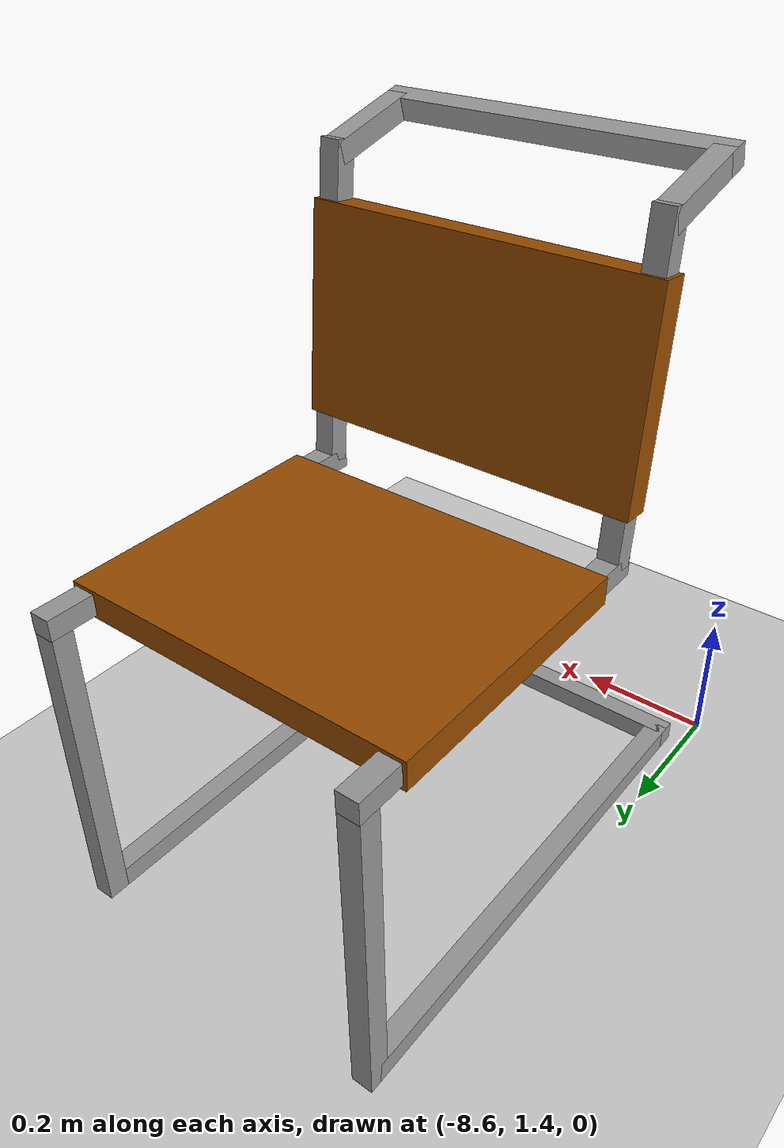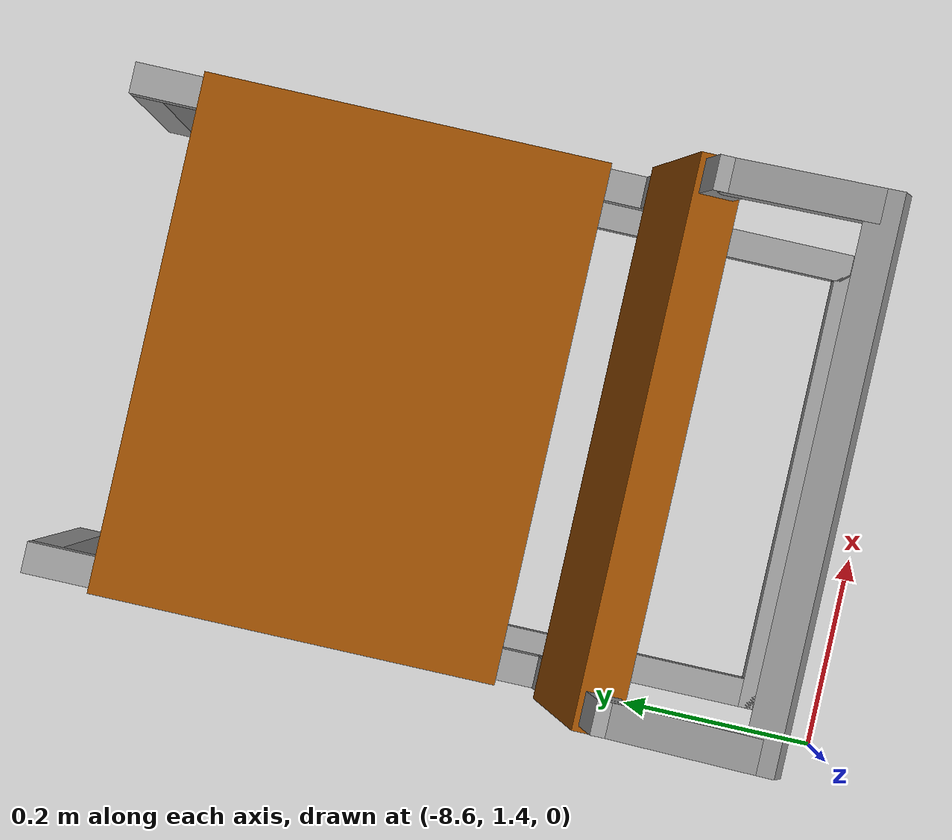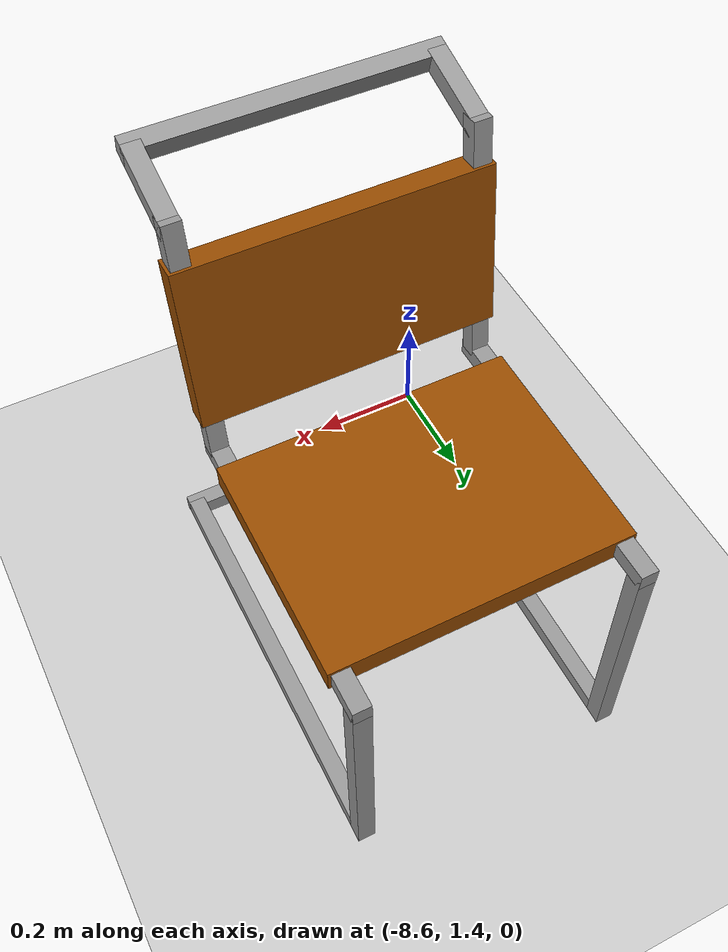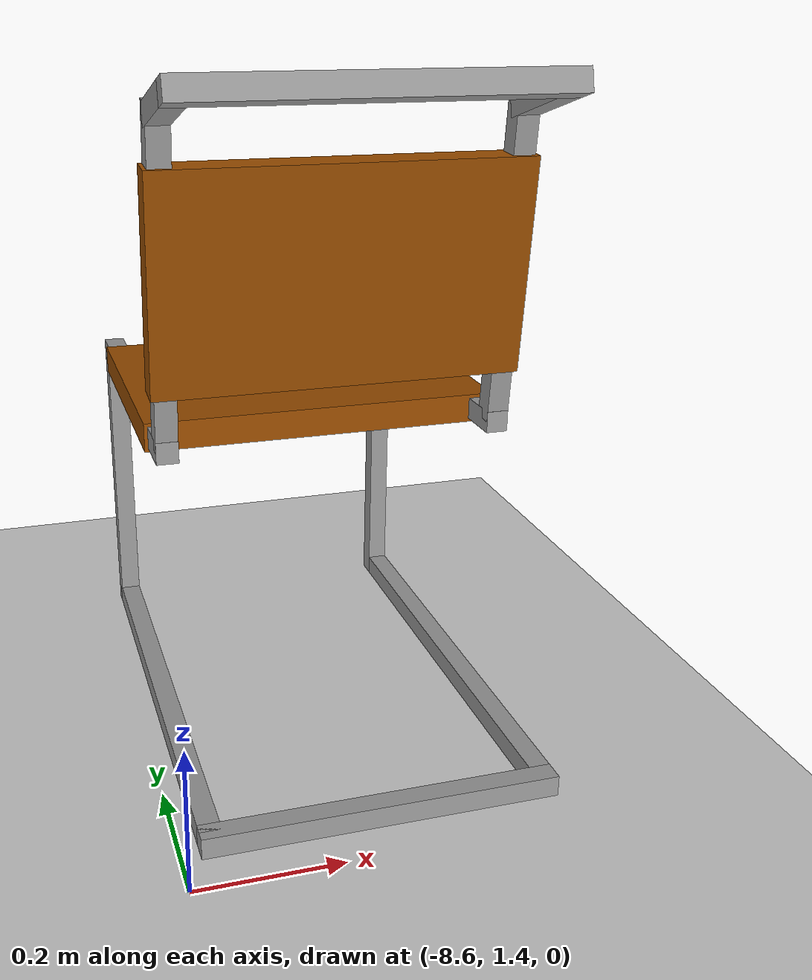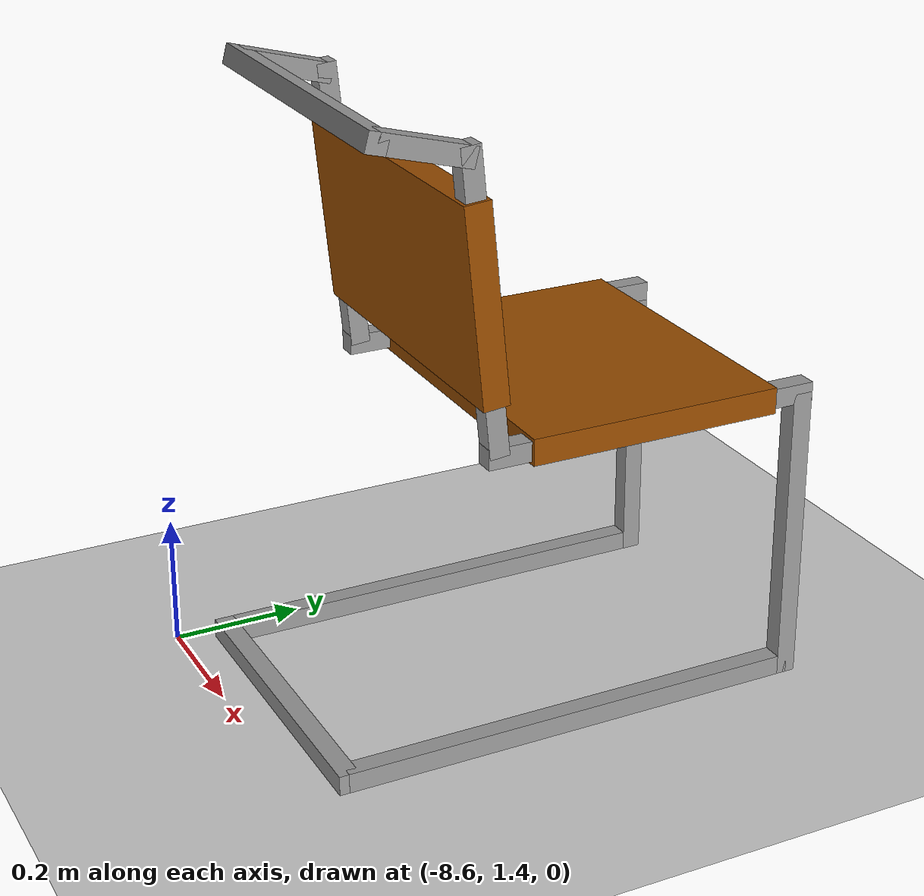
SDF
<sdf version="1.6">
 <world name="default">
  <model name="ground_plane">
   <static>1</static>
   <link name="link">
    <collision name="collision">
     <geometry><plane><normal>0 0 1</normal><size>100 100</size></plane></geometry>
     <surface><friction><ode><mu>100</mu><mu2>50</mu2></ode></friction></surface>
    </collision>
    <visual name="visual">
     <cast_shadows>0</cast_shadows>
     <geometry><plane><normal>0 0 1</normal><size>100 100</size></plane></geometry>
     <material>
      <script><uri>file://media/materials/scripts/gazebo.material</uri><name>Gazebo/Grey</name></script>
     </material>
    </visual>
   </link>
  </model>
  <model name="side_chair_0">
   <link name="link_3">
    <pose>0.475 0 0.46 0 -0 0</pose>
    <inertial>
     <mass>1</mass>
     <inertia>
      <ixx>0.166667</ixx>
      <ixy>0</ixy>
      <ixz>0</ixz>
      <iyy>0.166667</iyy>
      <iyz>0</iyz>
      <izz>0.166667</izz>
     </inertia>
    </inertial>
    <visual name="visual">
     <geometry><box><size>0.39 0.5 0.04</size></box></geometry>
     <material>
      <lighting>1</lighting>
      <script><uri>file://media/materials/scripts/gazebo.material</uri><name>Gazebo/Grey</name></script>
      <shader type="pixel"><normal_map>__default__</normal_map></shader>
      <ambient>0.6 0.3 0 1</ambient>
      <diffuse>0.7 0.7 0.7 1</diffuse>
      <specular>0.01 0.01 0.01 1</specular>
      <emissive>0 0 0 1</emissive>
     </material>
    </visual>
    <collision name="collision">
     <geometry><box><size>0.39 0.5 0.04</size></box></geometry>
     <surface>
      <friction>
       <ode><mu>1</mu><mu2>1</mu2><fdir1>0 0 0</fdir1><slip1>0</slip1><slip2>0</slip2></ode>
       <torsional>
        <coefficient>1</coefficient>
        <patch_radius>0</patch_radius>
        <surface_radius>0</surface_radius>
        <use_patch_radius>1</use_patch_radius>
        <ode><slip>0</slip></ode>
       </torsional>
      </friction>
      <bounce><restitution_coefficient>0</restitution_coefficient><threshold>1e+06</threshold></bounce>
      <contact>
       <collide_without_contact>0</collide_without_contact>
       <collide_without_contact_bitmask>1</collide_without_contact_bitmask>
       <collide_bitmask>1</collide_bitmask>
       <ode>
        <soft_cfm>0</soft_cfm>
        <soft_erp>0.2</soft_erp>
        <kp>1e+13</kp>
        <kd>1</kd>
        <max_vel>0.01</max_vel>
        <min_depth>0</min_depth>
       </ode>
       <bullet>
        <split_impulse>1</split_impulse>
        <split_impulse_penetration_threshold>-0.01</split_impulse_penetration_threshold>
        <soft_cfm>0</soft_cfm>
        <soft_erp>0.2</soft_erp>
        <kp>1e+13</kp>
        <kd>1</kd>
       </bullet>
      </contact>
     </surface>
    </collision>
   </link>
   <link name="link_3_clone">
    <pose>0.21 0 0.68 0 1.4739 0</pose>
    <inertial>
     <mass>0.748385</mass>
     <inertia>
      <ixx>0.0150301</ixx>
      <ixy>0</ixy>
      <ixz>0</ixz>
      <iyy>0.0053689</iyy>
      <iyz>0</iyz>
      <izz>0.0202867</izz>
     </inertia>
    </inertial>
    <visual name="visual">
     <geometry><box><size>0.29 0.5 0.04</size></box></geometry>
     <material>
      <lighting>1</lighting>
      <script><uri>file://media/materials/scripts/gazebo.material</uri><name>Gazebo/Grey</name></script>
      <shader type="pixel"><normal_map>__default__</normal_map></shader>
      <ambient>0.6 0.3 0 1</ambient>
      <diffuse>0.7 0.7 0.7 1</diffuse>
      <specular>0.01 0.01 0.01 1</specular>
      <emissive>0 0 0 1</emissive>
     </material>
    </visual>
    <collision name="collision">
     <geometry><box><size>0.29 0.5 0.04</size></box></geometry>
     <surface>
      <friction>
       <ode><mu>1</mu><mu2>1</mu2><fdir1>0 0 0</fdir1><slip1>0</slip1><slip2>0</slip2></ode>
       <torsional>
        <coefficient>1</coefficient>
        <patch_radius>0</patch_radius>
        <surface_radius>0</surface_radius>
        <use_patch_radius>1</use_patch_radius>
        <ode><slip>0</slip></ode>
       </torsional>
      </friction>
      <bounce><restitution_coefficient>0</restitution_coefficient><threshold>1e+06</threshold></bounce>
      <contact>
       <collide_without_contact>0</collide_without_contact>
       <collide_without_contact_bitmask>1</collide_without_contact_bitmask>
       <collide_bitmask>1</collide_bitmask>
       <ode>
        <soft_cfm>0</soft_cfm>
        <soft_erp>0.2</soft_erp>
        <kp>1e+13</kp>
        <kd>1</kd>
        <max_vel>0.01</max_vel>
        <min_depth>0</min_depth>
       </ode>
       <bullet>
        <split_impulse>1</split_impulse>
        <split_impulse_penetration_threshold>-0.01</split_impulse_penetration_threshold>
        <soft_cfm>0</soft_cfm>
        <soft_erp>0.2</soft_erp>
        <kp>1e+13</kp>
        <kd>1</kd>
       </bullet>
      </contact>
     </surface>
    </collision>
   </link>
   <link name="link_3_clone_0">
    <pose>0.475 -0.23 0.46 0 -0 0</pose>
    <inertial>
     <mass>1.33571</mass>
     <inertia>
      <ixx>0.00020036</ixx>
      <ixy>0</ixy>
      <ixz>0</ixz>
      <iyy>0.0303055</iyy>
      <iyz>0</iyz>
      <izz>0.0303055</izz>
     </inertia>
    </inertial>
    <visual name="visual">
     <geometry><box><size>0.520926 0.03 0.03</size></box></geometry>
     <material>
      <lighting>1</lighting>
      <script><uri>file://media/materials/scripts/gazebo.material</uri><name>Gazebo/Grey</name></script>
      <shader type="pixel"><normal_map>__default__</normal_map></shader>
      <ambient>0.75 0.75 0.75 1</ambient>
      <diffuse>0.7 0.7 0.7 1</diffuse>
      <specular>0.01 0.01 0.01 1</specular>
      <emissive>0 0 0 1</emissive>
     </material>
    </visual>
    <collision name="collision">
     <geometry><box><size>0.520926 0.03 0.03</size></box></geometry>
     <surface>
      <friction>
       <ode><mu>1</mu><mu2>1</mu2><fdir1>0 0 0</fdir1><slip1>0</slip1><slip2>0</slip2></ode>
       <torsional>
        <coefficient>1</coefficient>
        <patch_radius>0</patch_radius>
        <surface_radius>0</surface_radius>
        <use_patch_radius>1</use_patch_radius>
        <ode><slip>0</slip></ode>
       </torsional>
      </friction>
      <bounce><restitution_coefficient>0</restitution_coefficient><threshold>1e+06</threshold></bounce>
      <contact>
       <collide_without_contact>0</collide_without_contact>
       <collide_without_contact_bitmask>1</collide_without_contact_bitmask>
       <collide_bitmask>1</collide_bitmask>
       <ode>
        <soft_cfm>0</soft_cfm>
        <soft_erp>0.2</soft_erp>
        <kp>1e+13</kp>
        <kd>1</kd>
        <max_vel>0.01</max_vel>
        <min_depth>0</min_depth>
       </ode>
       <bullet>
        <split_impulse>1</split_impulse>
        <split_impulse_penetration_threshold>-0.01</split_impulse_penetration_threshold>
        <soft_cfm>0</soft_cfm>
        <soft_erp>0.2</soft_erp>
        <kp>1e+13</kp>
        <kd>1</kd>
       </bullet>
      </contact>
     </surface>
    </collision>
   </link>
   <link name="link_3_clone_0_clone">
    <pose>0.72 -0.23 0.23 0 -0 0</pose>
    <inertial>
     <mass>1.33571</mass>
     <inertia>
      <ixx>0.00020036</ixx>
      <ixy>0</ixy>
      <ixz>0</ixz>
      <iyy>0.0303055</iyy>
      <iyz>0</iyz>
      <izz>0.0303055</izz>
     </inertia>
    </inertial>
    <visual name="visual">
     <geometry><box><size>0.03 0.03 0.46</size></box></geometry>
     <material>
      <lighting>1</lighting>
      <script><uri>file://media/materials/scripts/gazebo.material</uri><name>Gazebo/Grey</name></script>
      <shader type="pixel"><normal_map>__default__</normal_map></shader>
      <ambient>0.75 0.75 0.75 1</ambient>
      <diffuse>0.7 0.7 0.7 1</diffuse>
      <specular>0.01 0.01 0.01 1</specular>
      <emissive>0 0 0 1</emissive>
     </material>
    </visual>
    <collision name="collision">
     <geometry><box><size>0.03 0.03 0.46</size></box></geometry>
     <surface>
      <friction>
       <ode><mu>1</mu><mu2>1</mu2><fdir1>0 0 0</fdir1><slip1>0</slip1><slip2>0</slip2></ode>
       <torsional>
        <coefficient>1</coefficient>
        <patch_radius>0</patch_radius>
        <surface_radius>0</surface_radius>
        <use_patch_radius>1</use_patch_radius>
        <ode><slip>0</slip></ode>
       </torsional>
      </friction>
      <bounce><restitution_coefficient>0</restitution_coefficient><threshold>1e+06</threshold></bounce>
      <contact>
       <collide_without_contact>0</collide_without_contact>
       <collide_without_contact_bitmask>1</collide_without_contact_bitmask>
       <collide_bitmask>1</collide_bitmask>
       <ode>
        <soft_cfm>0</soft_cfm>
        <soft_erp>0.2</soft_erp>
        <kp>1e+13</kp>
        <kd>1</kd>
        <max_vel>0.01</max_vel>
        <min_depth>0</min_depth>
       </ode>
       <bullet>
        <split_impulse>1</split_impulse>
        <split_impulse_penetration_threshold>-0.01</split_impulse_penetration_threshold>
        <soft_cfm>0</soft_cfm>
        <soft_erp>0.2</soft_erp>
        <kp>1e+13</kp>
        <kd>1</kd>
       </bullet>
      </contact>
     </surface>
    </collision>
   </link>
   <link name="link_3_clone_0_clone_0">
    <pose>0.36 -0.23 0.015 0 -0 0</pose>
    <inertial>
     <mass>1.84718</mass>
     <inertia>
      <ixx>0.00027708</ixx>
      <ixy>0</ixy>
      <ixz>0</ixz>
      <iyy>0.0800255</iyy>
      <iyz>0</iyz>
      <izz>0.0800255</izz>
     </inertia>
    </inertial>
    <visual name="visual">
     <geometry><box><size>0.7204 0.03 0.03</size></box></geometry>
     <material>
      <lighting>1</lighting>
      <script><uri>file://media/materials/scripts/gazebo.material</uri><name>Gazebo/Grey</name></script>
      <shader type="pixel"><normal_map>__default__</normal_map></shader>
      <ambient>0.75 0.75 0.75 1</ambient>
      <diffuse>0.7 0.7 0.7 1</diffuse>
      <specular>0.01 0.01 0.01 1</specular>
      <emissive>0 0 0 1</emissive>
     </material>
    </visual>
    <collision name="collision">
     <geometry><box><size>0.7204 0.03 0.03</size></box></geometry>
     <surface>
      <friction>
       <ode><mu>1</mu><mu2>1</mu2><fdir1>0 0 0</fdir1><slip1>0</slip1><slip2>0</slip2></ode>
       <torsional>
        <coefficient>1</coefficient>
        <patch_radius>0</patch_radius>
        <surface_radius>0</surface_radius>
        <use_patch_radius>1</use_patch_radius>
        <ode><slip>0</slip></ode>
       </torsional>
      </friction>
      <bounce><restitution_coefficient>0</restitution_coefficient><threshold>1e+06</threshold></bounce>
      <contact>
       <collide_without_contact>0</collide_without_contact>
       <collide_without_contact_bitmask>1</collide_without_contact_bitmask>
       <collide_bitmask>1</collide_bitmask>
       <ode>
        <soft_cfm>0</soft_cfm>
        <soft_erp>0.2</soft_erp>
        <kp>1e+13</kp>
        <kd>1</kd>
        <max_vel>0.01</max_vel>
        <min_depth>0</min_depth>
       </ode>
       <bullet>
        <split_impulse>1</split_impulse>
        <split_impulse_penetration_threshold>-0.01</split_impulse_penetration_threshold>
        <soft_cfm>0</soft_cfm>
        <soft_erp>0.2</soft_erp>
        <kp>1e+13</kp>
        <kd>1</kd>
       </bullet>
      </contact>
     </surface>
    </collision>
   </link>
   <link name="link_3_clone_0_clone_0_clone">
    <pose>0.13 -0.23 0.9 0 0.262585 0</pose>
    <inertial>
     <mass>0.359555</mass>
     <inertia>
      <ixx>5.393e-05</ixx>
      <ixy>0</ixy>
      <ixz>0</ixz>
      <iyy>0.00061614</iyy>
      <iyz>0</iyz>
      <izz>0.00061614</izz>
     </inertia>
    </inertial>
    <visual name="visual">
     <geometry><box><size>0.140226 0.03 0.03</size></box></geometry>
     <material>
      <lighting>1</lighting>
      <script><uri>file://media/materials/scripts/gazebo.material</uri><name>Gazebo/Grey</name></script>
      <shader type="pixel"><normal_map>__default__</normal_map></shader>
      <ambient>0.75 0.75 0.75 1</ambient>
      <diffuse>0.7 0.7 0.7 1</diffuse>
      <specular>0.01 0.01 0.01 1</specular>
      <emissive>0 0 0 1</emissive>
     </material>
    </visual>
    <collision name="collision">
     <geometry><box><size>0.140226 0.03 0.03</size></box></geometry>
     <surface>
      <friction>
       <ode><mu>1</mu><mu2>1</mu2><fdir1>0 0 0</fdir1><slip1>0</slip1><slip2>0</slip2></ode>
       <torsional>
        <coefficient>1</coefficient>
        <patch_radius>0</patch_radius>
        <surface_radius>0</surface_radius>
        <use_patch_radius>1</use_patch_radius>
        <ode><slip>0</slip></ode>
       </torsional>
      </friction>
      <bounce><restitution_coefficient>0</restitution_coefficient><threshold>1e+06</threshold></bounce>
      <contact>
       <collide_without_contact>0</collide_without_contact>
       <collide_without_contact_bitmask>1</collide_without_contact_bitmask>
       <collide_bitmask>1</collide_bitmask>
       <ode>
        <soft_cfm>0</soft_cfm>
        <soft_erp>0.2</soft_erp>
        <kp>1e+13</kp>
        <kd>1</kd>
        <max_vel>0.01</max_vel>
        <min_depth>0</min_depth>
       </ode>
       <bullet>
        <split_impulse>1</split_impulse>
        <split_impulse_penetration_threshold>-0.01</split_impulse_penetration_threshold>
        <soft_cfm>0</soft_cfm>
        <soft_erp>0.2</soft_erp>
        <kp>1e+13</kp>
        <kd>1</kd>
       </bullet>
      </contact>
     </surface>
    </collision>
   </link>
   <link name="link_3_clone_0_clone_0_clone_0">
    <pose>0.36 0.23 0.015 0 -0 0</pose>
    <inertial>
     <mass>1.84718</mass>
     <inertia>
      <ixx>0.00027708</ixx>
      <ixy>0</ixy>
      <ixz>0</ixz>
      <iyy>0.0800255</iyy>
      <iyz>0</iyz>
      <izz>0.0800255</izz>
     </inertia>
    </inertial>
    <visual name="visual">
     <geometry><box><size>0.7204 0.03 0.03</size></box></geometry>
     <material>
      <lighting>1</lighting>
      <script><uri>file://media/materials/scripts/gazebo.material</uri><name>Gazebo/Grey</name></script>
      <shader type="pixel"><normal_map>__default__</normal_map></shader>
      <ambient>0.75 0.75 0.75 1</ambient>
      <diffuse>0.7 0.7 0.7 1</diffuse>
      <specular>0.01 0.01 0.01 1</specular>
      <emissive>0 0 0 1</emissive>
     </material>
    </visual>
    <collision name="collision">
     <geometry><box><size>0.7204 0.03 0.03</size></box></geometry>
     <surface>
      <friction>
       <ode><mu>1</mu><mu2>1</mu2><fdir1>0 0 0</fdir1><slip1>0</slip1><slip2>0</slip2></ode>
       <torsional>
        <coefficient>1</coefficient>
        <patch_radius>0</patch_radius>
        <surface_radius>0</surface_radius>
        <use_patch_radius>1</use_patch_radius>
        <ode><slip>0</slip></ode>
       </torsional>
      </friction>
      <bounce><restitution_coefficient>0</restitution_coefficient><threshold>1e+06</threshold></bounce>
      <contact>
       <collide_without_contact>0</collide_without_contact>
       <collide_without_contact_bitmask>1</collide_without_contact_bitmask>
       <collide_bitmask>1</collide_bitmask>
       <ode>
        <soft_cfm>0</soft_cfm>
        <soft_erp>0.2</soft_erp>
        <kp>1e+13</kp>
        <kd>1</kd>
        <max_vel>0.01</max_vel>
        <min_depth>0</min_depth>
       </ode>
       <bullet>
        <split_impulse>1</split_impulse>
        <split_impulse_penetration_threshold>-0.01</split_impulse_penetration_threshold>
        <soft_cfm>0</soft_cfm>
        <soft_erp>0.2</soft_erp>
        <kp>1e+13</kp>
        <kd>1</kd>
       </bullet>
      </contact>
     </surface>
    </collision>
   </link>
   <link name="link_3_clone_0_clone_0_clone_clone">
    <pose>0.13 0.23 0.9 0 0.262585 0</pose>
    <inertial>
     <mass>0.359555</mass>
     <inertia>
      <ixx>5.393e-05</ixx>
      <ixy>0</ixy>
      <ixz>0</ixz>
      <iyy>0.00061614</iyy>
      <iyz>0</iyz>
      <izz>0.00061614</izz>
     </inertia>
    </inertial>
    <visual name="visual">
     <geometry><box><size>0.140226 0.03 0.03</size></box></geometry>
     <material>
      <lighting>1</lighting>
      <script><uri>file://media/materials/scripts/gazebo.material</uri><name>Gazebo/Grey</name></script>
      <shader type="pixel"><normal_map>__default__</normal_map></shader>
      <ambient>0.75 0.75 0.75 1</ambient>
      <diffuse>0.7 0.7 0.7 1</diffuse>
      <specular>0.01 0.01 0.01 1</specular>
      <emissive>0 0 0 1</emissive>
     </material>
    </visual>
    <collision name="collision">
     <geometry><box><size>0.140226 0.03 0.03</size></box></geometry>
     <surface>
      <friction>
       <ode><mu>1</mu><mu2>1</mu2><fdir1>0 0 0</fdir1><slip1>0</slip1><slip2>0</slip2></ode>
       <torsional>
        <coefficient>1</coefficient>
        <patch_radius>0</patch_radius>
        <surface_radius>0</surface_radius>
        <use_patch_radius>1</use_patch_radius>
        <ode><slip>0</slip></ode>
       </torsional>
      </friction>
      <bounce><restitution_coefficient>0</restitution_coefficient><threshold>1e+06</threshold></bounce>
      <contact>
       <collide_without_contact>0</collide_without_contact>
       <collide_without_contact_bitmask>1</collide_without_contact_bitmask>
       <collide_bitmask>1</collide_bitmask>
       <ode>
        <soft_cfm>0</soft_cfm>
        <soft_erp>0.2</soft_erp>
        <kp>1e+13</kp>
        <kd>1</kd>
        <max_vel>0.01</max_vel>
        <min_depth>0</min_depth>
       </ode>
       <bullet>
        <split_impulse>1</split_impulse>
        <split_impulse_penetration_threshold>-0.01</split_impulse_penetration_threshold>
        <soft_cfm>0</soft_cfm>
        <soft_erp>0.2</soft_erp>
        <kp>1e+13</kp>
        <kd>1</kd>
       </bullet>
      </contact>
     </surface>
    </collision>
   </link>
   <link name="link_3_clone_0_clone_1">
    <pose>0.475 0.23 0.46 0 -0 0</pose>
    <inertial>
     <mass>1.33571</mass>
     <inertia>
      <ixx>0.00020036</ixx>
      <ixy>0</ixy>
      <ixz>0</ixz>
      <iyy>0.0303055</iyy>
      <iyz>0</iyz>
      <izz>0.0303055</izz>
     </inertia>
    </inertial>
    <visual name="visual">
     <geometry><box><size>0.520926 0.03 0.03</size></box></geometry>
     <material>
      <lighting>1</lighting>
      <script><uri>file://media/materials/scripts/gazebo.material</uri><name>Gazebo/Grey</name></script>
      <shader type="pixel"><normal_map>__default__</normal_map></shader>
      <ambient>0.75 0.75 0.75 1</ambient>
      <diffuse>0.7 0.7 0.7 1</diffuse>
      <specular>0.01 0.01 0.01 1</specular>
      <emissive>0 0 0 1</emissive>
     </material>
    </visual>
    <collision name="collision">
     <geometry><box><size>0.520926 0.03 0.03</size></box></geometry>
     <surface>
      <friction>
       <ode><mu>1</mu><mu2>1</mu2><fdir1>0 0 0</fdir1><slip1>0</slip1><slip2>0</slip2></ode>
       <torsional>
        <coefficient>1</coefficient>
        <patch_radius>0</patch_radius>
        <surface_radius>0</surface_radius>
        <use_patch_radius>1</use_patch_radius>
        <ode><slip>0</slip></ode>
       </torsional>
      </friction>
      <bounce><restitution_coefficient>0</restitution_coefficient><threshold>1e+06</threshold></bounce>
      <contact>
       <collide_without_contact>0</collide_without_contact>
       <collide_without_contact_bitmask>1</collide_without_contact_bitmask>
       <collide_bitmask>1</collide_bitmask>
       <ode>
        <soft_cfm>0</soft_cfm>
        <soft_erp>0.2</soft_erp>
        <kp>1e+13</kp>
        <kd>1</kd>
        <max_vel>0.01</max_vel>
        <min_depth>0</min_depth>
       </ode>
       <bullet>
        <split_impulse>1</split_impulse>
        <split_impulse_penetration_threshold>-0.01</split_impulse_penetration_threshold>
        <soft_cfm>0</soft_cfm>
        <soft_erp>0.2</soft_erp>
        <kp>1e+13</kp>
        <kd>1</kd>
       </bullet>
      </contact>
     </surface>
    </collision>
   </link>
   <link name="link_3_clone_0_clone_clone">
    <pose>0.72 0.23 0.23 0 -0 0</pose>
    <inertial>
     <mass>1.33571</mass>
     <inertia>
      <ixx>0.00020036</ixx>
      <ixy>0</ixy>
      <ixz>0</ixz>
      <iyy>0.0303055</iyy>
      <iyz>0</iyz>
      <izz>0.0303055</izz>
     </inertia>
    </inertial>
    <visual name="visual">
     <geometry><box><size>0.03 0.03 0.46</size></box></geometry>
     <material>
      <lighting>1</lighting>
      <script><uri>file://media/materials/scripts/gazebo.material</uri><name>Gazebo/Grey</name></script>
      <shader type="pixel"><normal_map>__default__</normal_map></shader>
      <ambient>0.75 0.75 0.75 1</ambient>
      <diffuse>0.7 0.7 0.7 1</diffuse>
      <specular>0.01 0.01 0.01 1</specular>
      <emissive>0 0 0 1</emissive>
     </material>
    </visual>
    <collision name="collision">
     <geometry><box><size>0.03 0.03 0.46</size></box></geometry>
     <surface>
      <friction>
       <ode><mu>1</mu><mu2>1</mu2><fdir1>0 0 0</fdir1><slip1>0</slip1><slip2>0</slip2></ode>
       <torsional>
        <coefficient>1</coefficient>
        <patch_radius>0</patch_radius>
        <surface_radius>0</surface_radius>
        <use_patch_radius>1</use_patch_radius>
        <ode><slip>0</slip></ode>
       </torsional>
      </friction>
      <bounce><restitution_coefficient>0</restitution_coefficient><threshold>1e+06</threshold></bounce>
      <contact>
       <collide_without_contact>0</collide_without_contact>
       <collide_without_contact_bitmask>1</collide_without_contact_bitmask>
       <collide_bitmask>1</collide_bitmask>
       <ode>
        <soft_cfm>0</soft_cfm>
        <soft_erp>0.2</soft_erp>
        <kp>1e+13</kp>
        <kd>1</kd>
        <max_vel>0.01</max_vel>
        <min_depth>0</min_depth>
       </ode>
       <bullet>
        <split_impulse>1</split_impulse>
        <split_impulse_penetration_threshold>-0.01</split_impulse_penetration_threshold>
        <soft_cfm>0</soft_cfm>
        <soft_erp>0.2</soft_erp>
        <kp>1e+13</kp>
        <kd>1</kd>
       </bullet>
      </contact>
     </surface>
    </collision>
   </link>
   <link name="link_3_clone_clone">
    <pose>0.21 -0.23 0.68 0 1.4739 0</pose>
    <inertial>
     <mass>1.13912</mass>
     <inertia>
      <ixx>0.00017087</ixx>
      <ixy>0</ixy>
      <ixz>0</ixz>
      <iyy>0.0188203</iyy>
      <iyz>0</iyz>
      <izz>0.0188203</izz>
     </inertia>
    </inertial>
    <visual name="visual">
     <geometry><box><size>0.44 0.03 0.03</size></box></geometry>
     <material>
      <lighting>1</lighting>
      <script><uri>file://media/materials/scripts/gazebo.material</uri><name>Gazebo/Grey</name></script>
      <shader type="pixel"><normal_map>__default__</normal_map></shader>
      <ambient>0.75 0.75 0.75 1</ambient>
      <diffuse>0.7 0.7 0.7 1</diffuse>
      <specular>0.01 0.01 0.01 1</specular>
      <emissive>0 0 0 1</emissive>
     </material>
    </visual>
    <collision name="collision">
     <geometry><box><size>0.444254 0.03 0.03</size></box></geometry>
     <surface>
      <friction>
       <ode><mu>1</mu><mu2>1</mu2><fdir1>0 0 0</fdir1><slip1>0</slip1><slip2>0</slip2></ode>
       <torsional>
        <coefficient>1</coefficient>
        <patch_radius>0</patch_radius>
        <surface_radius>0</surface_radius>
        <use_patch_radius>1</use_patch_radius>
        <ode><slip>0</slip></ode>
       </torsional>
      </friction>
      <bounce><restitution_coefficient>0</restitution_coefficient><threshold>1e+06</threshold></bounce>
      <contact>
       <collide_without_contact>0</collide_without_contact>
       <collide_without_contact_bitmask>1</collide_without_contact_bitmask>
       <collide_bitmask>1</collide_bitmask>
       <ode>
        <soft_cfm>0</soft_cfm>
        <soft_erp>0.2</soft_erp>
        <kp>1e+13</kp>
        <kd>1</kd>
        <max_vel>0.01</max_vel>
        <min_depth>0</min_depth>
       </ode>
       <bullet>
        <split_impulse>1</split_impulse>
        <split_impulse_penetration_threshold>-0.01</split_impulse_penetration_threshold>
        <soft_cfm>0</soft_cfm>
        <soft_erp>0.2</soft_erp>
        <kp>1e+13</kp>
        <kd>1</kd>
       </bullet>
      </contact>
     </surface>
    </collision>
   </link>
   <link name="link_3_clone_clone_clone">
    <pose>0.21 0.23 0.68 0 1.4739 0</pose>
    <inertial>
     <mass>1.13912</mass>
     <inertia>
      <ixx>0.00017087</ixx>
      <ixy>0</ixy>
      <ixz>0</ixz>
      <iyy>0.0188203</iyy>
      <iyz>0</iyz>
      <izz>0.0188203</izz>
     </inertia>
    </inertial>
    <visual name="visual">
     <geometry><box><size>0.44 0.03 0.03</size></box></geometry>
     <material>
      <lighting>1</lighting>
      <script><uri>file://media/materials/scripts/gazebo.material</uri><name>Gazebo/Grey</name></script>
      <shader type="pixel"><normal_map>__default__</normal_map></shader>
      <ambient>0.75 0.75 0.75 1</ambient>
      <diffuse>0.7 0.7 0.7 1</diffuse>
      <specular>0.01 0.01 0.01 1</specular>
      <emissive>0 0 0 1</emissive>
     </material>
    </visual>
    <collision name="collision">
     <geometry><box><size>0.444254 0.03 0.03</size></box></geometry>
     <surface>
      <friction>
       <ode><mu>1</mu><mu2>1</mu2><fdir1>0 0 0</fdir1><slip1>0</slip1><slip2>0</slip2></ode>
       <torsional>
        <coefficient>1</coefficient>
        <patch_radius>0</patch_radius>
        <surface_radius>0</surface_radius>
        <use_patch_radius>1</use_patch_radius>
        <ode><slip>0</slip></ode>
       </torsional>
      </friction>
      <bounce><restitution_coefficient>0</restitution_coefficient><threshold>1e+06</threshold></bounce>
      <contact>
       <collide_without_contact>0</collide_without_contact>
       <collide_without_contact_bitmask>1</collide_without_contact_bitmask>
       <collide_bitmask>1</collide_bitmask>
       <ode>
        <soft_cfm>0</soft_cfm>
        <soft_erp>0.2</soft_erp>
        <kp>1e+13</kp>
        <kd>1</kd>
        <max_vel>0.01</max_vel>
        <min_depth>0</min_depth>
       </ode>
       <bullet>
        <split_impulse>1</split_impulse>
        <split_impulse_penetration_threshold>-0.01</split_impulse_penetration_threshold>
        <soft_cfm>0</soft_cfm>
        <soft_erp>0.2</soft_erp>
        <kp>1e+13</kp>
        <kd>1</kd>
       </bullet>
      </contact>
     </surface>
    </collision>
   </link>
   <link name="link_4">
    <pose>0 0 0.015 0 -0 0</pose>
    <inertial>
     <mass>1.05988</mass>
     <inertia>
      <ixx>0.0239014</ixx>
      <ixy>0</ixy>
      <ixz>0</ixz>
      <iyy>0.00015898</iyy>
      <iyz>0</iyz>
      <izz>0.0239014</izz>
     </inertia>
    </inertial>
    <visual name="visual">
     <geometry><box><size>0.03 0.49 0.03</size></box></geometry>
     <material>
      <lighting>1</lighting>
      <script><uri>file://media/materials/scripts/gazebo.material</uri><name>Gazebo/Grey</name></script>
      <shader type="pixel"><normal_map>__default__</normal_map></shader>
      <ambient>0.75 0.75 0.75 1</ambient>
      <diffuse>0.7 0.7 0.7 1</diffuse>
      <specular>0.01 0.01 0.01 1</specular>
      <emissive>0 0 0 1</emissive>
     </material>
    </visual>
    <collision name="collision">
     <geometry><box><size>0.03 0.49 0.03</size></box></geometry>
     <surface>
      <friction>
       <ode><mu>1</mu><mu2>1</mu2><fdir1>0 0 0</fdir1><slip1>0</slip1><slip2>0</slip2></ode>
       <torsional>
        <coefficient>1</coefficient>
        <patch_radius>0</patch_radius>
        <surface_radius>0</surface_radius>
        <use_patch_radius>1</use_patch_radius>
        <ode><slip>0</slip></ode>
       </torsional>
      </friction>
      <bounce><restitution_coefficient>0</restitution_coefficient><threshold>1e+06</threshold></bounce>
      <contact>
       <collide_without_contact>0</collide_without_contact>
       <collide_without_contact_bitmask>1</collide_without_contact_bitmask>
       <collide_bitmask>1</collide_bitmask>
       <ode>
        <soft_cfm>0</soft_cfm>
        <soft_erp>0.2</soft_erp>
        <kp>1e+13</kp>
        <kd>1</kd>
        <max_vel>0.01</max_vel>
        <min_depth>0</min_depth>
       </ode>
       <bullet>
        <split_impulse>1</split_impulse>
        <split_impulse_penetration_threshold>-0.01</split_impulse_penetration_threshold>
        <soft_cfm>0</soft_cfm>
        <soft_erp>0.2</soft_erp>
        <kp>1e+13</kp>
        <kd>1</kd>
       </bullet>
      </contact>
     </surface>
    </collision>
   </link>
   <link name="link_4_clone">
    <pose>0.061734 0 0.918349 0 0.262585 0</pose>
    <inertial>
     <mass>1.05988</mass>
     <inertia>
      <ixx>0.0239014</ixx>
      <ixy>0</ixy>
      <ixz>0</ixz>
      <iyy>0.00015898</iyy>
      <iyz>0</iyz>
      <izz>0.0239014</izz>
     </inertia>
    </inertial>
    <visual name="visual">
     <geometry><box><size>0.03 0.49 0.03</size></box></geometry>
     <material>
      <lighting>1</lighting>
      <script><uri>file://media/materials/scripts/gazebo.material</uri><name>Gazebo/Grey</name></script>
      <shader type="pixel"><normal_map>__default__</normal_map></shader>
      <ambient>0.75 0.75 0.75 1</ambient>
      <diffuse>0.7 0.7 0.7 1</diffuse>
      <specular>0.01 0.01 0.01 1</specular>
      <emissive>0 0 0 1</emissive>
     </material>
    </visual>
    <collision name="collision">
     <geometry><box><size>0.03 0.49 0.03</size></box></geometry>
     <surface>
      <friction>
       <ode><mu>1</mu><mu2>1</mu2><fdir1>0 0 0</fdir1><slip1>0</slip1><slip2>0</slip2></ode>
       <torsional>
        <coefficient>1</coefficient>
        <patch_radius>0</patch_radius>
        <surface_radius>0</surface_radius>
        <use_patch_radius>1</use_patch_radius>
        <ode><slip>0</slip></ode>
       </torsional>
      </friction>
      <bounce><restitution_coefficient>0</restitution_coefficient><threshold>1e+06</threshold></bounce>
      <contact>
       <collide_without_contact>0</collide_without_contact>
       <collide_without_contact_bitmask>1</collide_without_contact_bitmask>
       <collide_bitmask>1</collide_bitmask>
       <ode>
        <soft_cfm>0</soft_cfm>
        <soft_erp>0.2</soft_erp>
        <kp>1e+13</kp>
        <kd>1</kd>
        <max_vel>0.01</max_vel>
        <min_depth>0</min_depth>
       </ode>
       <bullet>
        <split_impulse>1</split_impulse>
        <split_impulse_penetration_threshold>-0.01</split_impulse_penetration_threshold>
        <soft_cfm>0</soft_cfm>
        <soft_erp>0.2</soft_erp>
        <kp>1e+13</kp>
        <kd>1</kd>
       </bullet>
      </contact>
     </surface>
    </collision>
   </link>
   <joint name="link_3_clone_0_JOINT_10" type="fixed">
    <parent>link_3_clone_0</parent>
    <child>link_3</child>
    <physics>
     <ode><limit><cfm>0</cfm><erp>0.2</erp></limit><suspension><cfm>0</cfm><erp>0.2</erp></suspension></ode>
    </physics>
   </joint>
   <joint name="link_3_clone_0_JOINT_6" type="fixed">
    <parent>link_3_clone_0</parent>
    <child>link_3_clone_clone</child>
    <physics>
     <ode><limit><cfm>0</cfm><erp>0.2</erp></limit><suspension><cfm>0</cfm><erp>0.2</erp></suspension></ode>
    </physics>
   </joint>
   <joint name="link_3_clone_0_clone_0_JOINT_4" type="fixed">
    <parent>link_3_clone_0_clone_0</parent>
    <child>link_3_clone_0_clone</child>
    <physics>
     <ode><limit><cfm>0</cfm><erp>0.2</erp></limit><suspension><cfm>0</cfm><erp>0.2</erp></suspension></ode>
    </physics>
   </joint>
   <joint name="link_3_clone_0_clone_0_clone_0_JOINT_11" type="fixed">
    <parent>link_3_clone_0_clone_0_clone_0</parent>
    <child>link_3_clone_0_clone_clone</child>
    <physics>
     <ode><limit><cfm>0</cfm><erp>0.2</erp></limit><suspension><cfm>0</cfm><erp>0.2</erp></suspension></ode>
    </physics>
   </joint>
   <joint name="link_3_clone_0_clone_0_clone_JOINT_8" type="fixed">
    <parent>link_3_clone_0_clone_0_clone</parent>
    <child>link_4_clone</child>
    <physics>
     <ode><limit><cfm>0</cfm><erp>0.2</erp></limit><suspension><cfm>0</cfm><erp>0.2</erp></suspension></ode>
    </physics>
   </joint>
   <joint name="link_3_clone_0_clone_0_clone_clone_JOINT_15" type="fixed">
    <parent>link_3_clone_0_clone_0_clone_clone</parent>
    <child>link_4_clone</child>
    <physics>
     <ode><limit><cfm>0</cfm><erp>0.2</erp></limit><suspension><cfm>0</cfm><erp>0.2</erp></suspension></ode>
    </physics>
   </joint>
   <joint name="link_3_clone_0_clone_1_JOINT_13" type="fixed">
    <parent>link_3_clone_0_clone_1</parent>
    <child>link_3_clone_clone_clone</child>
    <physics>
     <ode><limit><cfm>0</cfm><erp>0.2</erp></limit><suspension><cfm>0</cfm><erp>0.2</erp></suspension></ode>
    </physics>
   </joint>
   <joint name="link_3_clone_0_clone_1_JOINT_17" type="fixed">
    <parent>link_3_clone_0_clone_1</parent>
    <child>link_3</child>
    <physics>
     <ode><limit><cfm>0</cfm><erp>0.2</erp></limit><suspension><cfm>0</cfm><erp>0.2</erp></suspension></ode>
    </physics>
   </joint>
   <joint name="link_3_clone_0_clone_JOINT_5" type="fixed">
    <parent>link_3_clone_0_clone</parent>
    <child>link_3_clone_0</child>
    <physics>
     <ode><limit><cfm>0</cfm><erp>0.2</erp></limit><suspension><cfm>0</cfm><erp>0.2</erp></suspension></ode>
    </physics>
   </joint>
   <joint name="link_3_clone_0_clone_clone_JOINT_12" type="fixed">
    <parent>link_3_clone_0_clone_clone</parent>
    <child>link_3_clone_0_clone_1</child>
    <physics>
     <ode><limit><cfm>0</cfm><erp>0.2</erp></limit><suspension><cfm>0</cfm><erp>0.2</erp></suspension></ode>
    </physics>
   </joint>
   <joint name="link_3_clone_clone_JOINT_7" type="fixed">
    <parent>link_3_clone_clone</parent>
    <child>link_3_clone_0_clone_0_clone</child>
    <physics>
     <ode><limit><cfm>0</cfm><erp>0.2</erp></limit><suspension><cfm>0</cfm><erp>0.2</erp></suspension></ode>
    </physics>
   </joint>
   <joint name="link_3_clone_clone_JOINT_9" type="fixed">
    <parent>link_3_clone_clone</parent>
    <child>link_3_clone</child>
    <physics>
     <ode><limit><cfm>0</cfm><erp>0.2</erp></limit><suspension><cfm>0</cfm><erp>0.2</erp></suspension></ode>
    </physics>
   </joint>
   <joint name="link_3_clone_clone_clone_JOINT_14" type="fixed">
    <parent>link_3_clone_clone_clone</parent>
    <child>link_3_clone_0_clone_0_clone_clone</child>
    <physics>
     <ode><limit><cfm>0</cfm><erp>0.2</erp></limit><suspension><cfm>0</cfm><erp>0.2</erp></suspension></ode>
    </physics>
   </joint>
   <joint name="link_3_clone_clone_clone_JOINT_16" type="fixed">
    <parent>link_3_clone_clone_clone</parent>
    <child>link_3_clone</child>
    <physics>
     <ode><limit><cfm>0</cfm><erp>0.2</erp></limit><suspension><cfm>0</cfm><erp>0.2</erp></suspension></ode>
    </physics>
   </joint>
   <joint name="link_4_JOINT_2" type="fixed">
    <parent>link_4</parent>
    <child>link_3_clone_0_clone_0_clone_0</child>
    <physics>
     <ode><limit><cfm>0</cfm><erp>0.2</erp></limit><suspension><cfm>0</cfm><erp>0.2</erp></suspension></ode>
    </physics>
   </joint>
   <joint name="link_4_JOINT_3" type="fixed">
    <parent>link_4</parent>
    <child>link_3_clone_0_clone_0</child>
    <physics>
     <ode><limit><cfm>0</cfm><erp>0.2</erp></limit><suspension><cfm>0</cfm><erp>0.2</erp></suspension></ode>
    </physics>
   </joint>
   <static>0</static>
   <pose>-8.33029 1.46866 -2.9e-05 -2e-06 -3.2e-05 1.57071</pose>
  </model>
 </world>
</sdf>
